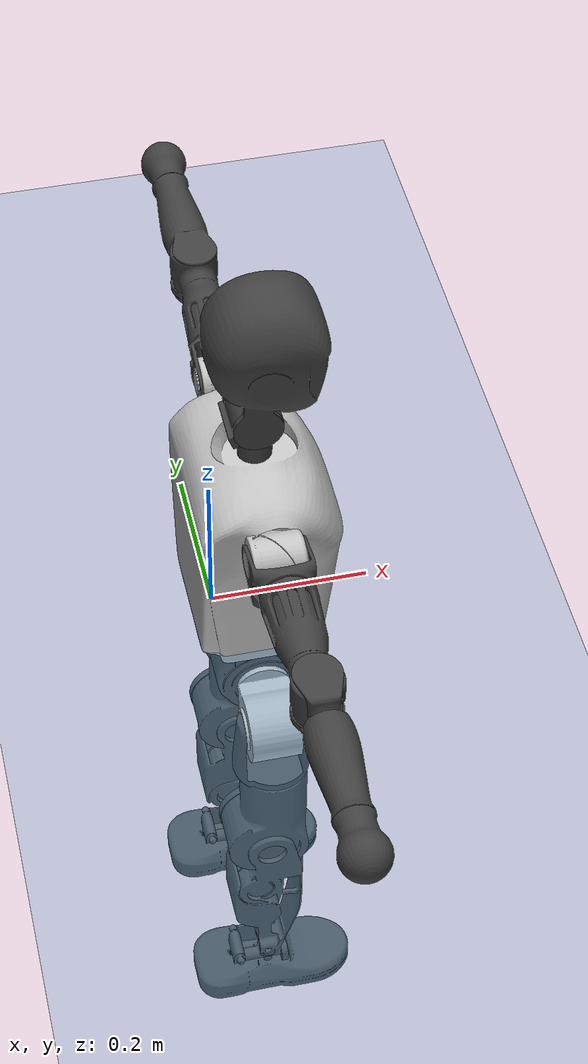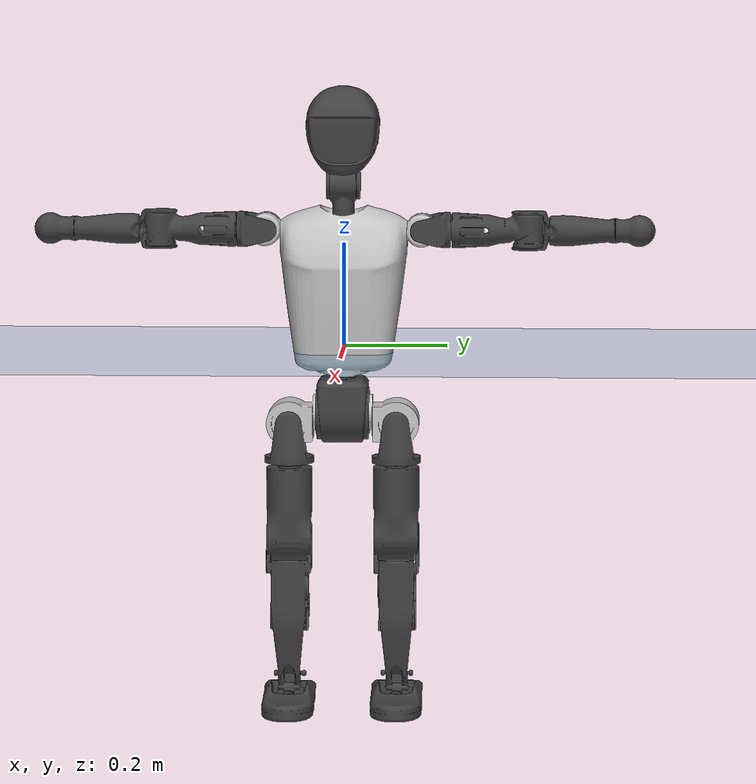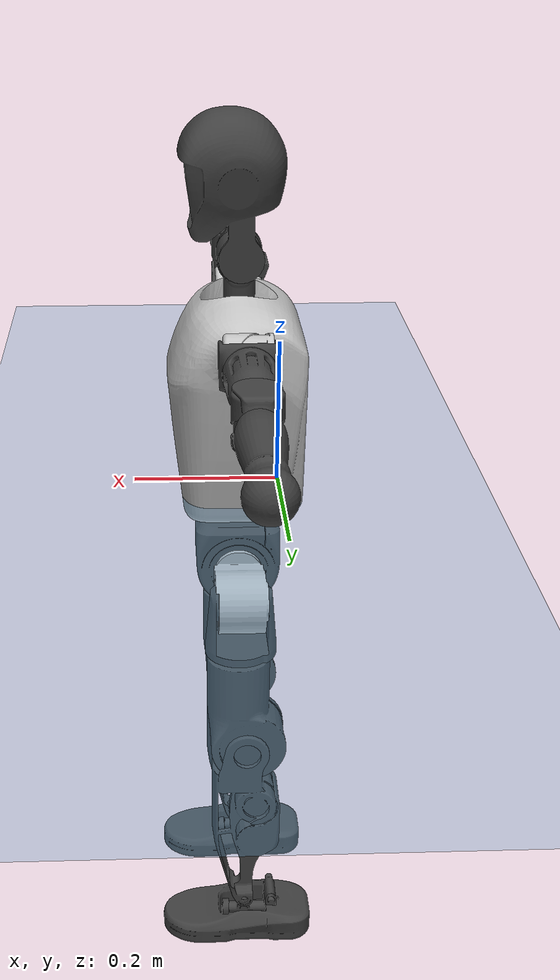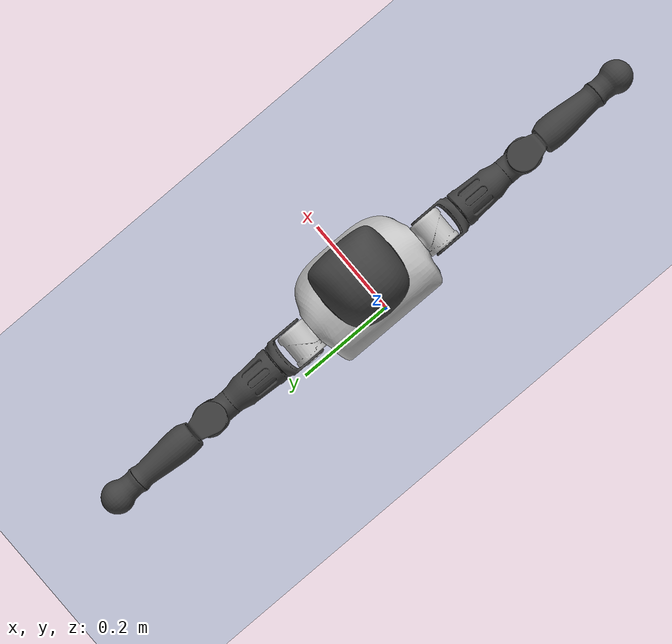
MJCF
<mujoco model="T1">
  <compiler angle="radian" assetdir="assets" balanceinertia="true" inertiafromgeom="false"/>

  <option timestep="0.005" density="1.2" viscosity="2e-05"/>

  <size nkey="1"/>

  <visual>
    <quality shadowsize="8192"/>
    <map shadowclip="0.5"/>
  </visual>

  <default>
    <default class="/">
      <joint armature="0.01" damping="0.01" frictionloss="0.1"/>
      <geom contype="0" conaffinity="0" group="1" solref="-1000 -80"/>
      <site size="0.01 0.005 0.005" group="5"/>
      <general forcelimited="true" biastype="affine" gainprm="25" biasprm="0 -25 -0.6"/>
      <default class="t1">
        <geom rgba="0.25 0.25 0.25 1"/>
        <default class="visual">
          <geom type="mesh" group="2"/>
        </default>
        <default class="collision">
          <geom group="3"/>
        </default>
        <default class="foot">
          <geom size="0.1115 0.05 0.015" type="box" condim="6" group="4" priority="1" solimp="0.015 1 0.015"/>
        </default>
        <default class="reward_collision_sphere">
          <geom group="5" rgba="1 0 0 1"/>
        </default>
      </default>
    </default>
  </default>

  <asset>
    <texture type="skybox" colorspace="auto" name="//unnamed_texture_0" builtin="gradient" rgb1="0.95 0.95 0.95" rgb2="0.95 0.95 0.95" width="100" height="600"/>
    <texture type="2d" colorspace="auto" name="texplane" builtin="checker" rgb1="0.345 0.575 0.748" rgb2="0.345 0.575 0.748" markrgb="1 1 1" width="512" height="512"/>
    <material name="MatPlane" class="/" texture="texplane" texuniform="true" texrepeat="2 2" specular="0.9"/>
    <mesh name="Trunk" class="/" file="Trunk.stl"/>
    <mesh name="H1" class="/" file="H1.stl"/>
    <mesh name="H2" class="/" file="H2.stl"/>
    <mesh name="AL1" class="/" file="AL1.stl"/>
    <mesh name="AL2" class="/" file="AL2.stl"/>
    <mesh name="AL3" class="/" file="AL3.stl"/>
    <mesh name="left_hand_link" class="/" file="left_hand_link.stl"/>
    <mesh name="AR1" class="/" file="AR1.stl"/>
    <mesh name="AR2" class="/" file="AR2.stl"/>
    <mesh name="AR3" class="/" file="AR3.stl"/>
    <mesh name="right_hand_link" class="/" file="right_hand_link.stl"/>
    <mesh name="Waist" class="/" file="Waist.stl"/>
    <mesh name="Hip_Pitch_Left" class="/" file="Hip_Pitch_Left.stl"/>
    <mesh name="Hip_Roll_Left" class="/" file="Hip_Roll_Left.stl"/>
    <mesh name="Hip_Yaw_Left" class="/" file="Hip_Yaw_Left.stl"/>
    <mesh name="Shank_Left" class="/" file="Shank_Left.stl"/>
    <mesh name="Ankle_Cross_Left" class="/" file="Ankle_Cross_Left.stl"/>
    <mesh name="left_foot_link" class="/" file="left_foot_link.stl"/>
    <mesh name="Hip_Pitch_Right" class="/" file="Hip_Pitch_Right.stl"/>
    <mesh name="Hip_Roll_Right" class="/" file="Hip_Roll_Right.stl"/>
    <mesh name="Hip_Yaw_Right" class="/" file="Hip_Yaw_Right.stl"/>
    <mesh name="Shank_Right" class="/" file="Shank_Right.stl"/>
    <mesh name="Ankle_Cross_Right" class="/" file="Ankle_Cross_Right.stl"/>
    <mesh name="right_foot_link" class="/" file="right_foot_link.stl"/>
  </asset>

  <worldbody>
    <geom name="floor" class="/" size="100 100 0.125" type="plane" group="0" material="MatPlane"/>
    <light name="toplight_shadow" class="/" pos="0 0 5" dir="0.0990148 0.0990148 -0.990148" type="directional" ambient="0.04 0.04 0.04" diffuse="0.55 0.55 0.55" specular="0.12 0.12 0.12"/>
    <light name="toplight_fill" class="/" pos="0 0 5" dir="0.0990148 0.0990148 -0.990148" type="directional" castshadow="false" ambient="0.04 0.04 0.04" diffuse="0.3 0.3 0.3" specular="0.08 0.08 0.08"/>
    <body name="trunk" childclass="t1" pos="0.000300448 0.00094215 0.000112088" quat="1 -7.57302e-05 -0.00024503 -0.000272055">
      <inertial pos="0.048165 -0.000690065 0.111992" quat="0.999961 0.000332903 -0.00879493 0.000747616" mass="10.7542" diaginertia="0.0492068 0.0671385 0.0721162"/>
      <joint name="//unnamed_joint_0" type="free" armature="0" damping="0" frictionloss="0"/>
      <geom name="//unnamed_geom_1" class="visual" rgba="0.76 0.76 0.76 1" mesh="Trunk"/>
      <geom name="//unnamed_geom_2" class="collision" size="0.0728214 0.0970952 0.145643" pos="0.0530605 0 0.126845" type="box"/>
      <geom name="//unnamed_geom_3" class="reward_collision_sphere" size="0.11166" pos="0.0530605 0 0.105704"/>
      <geom name="//unnamed_geom_4" class="reward_collision_sphere" size="0.0145643" pos="0.0530605 0.082575 0"/>
      <geom name="//unnamed_geom_5" class="reward_collision_sphere" size="0.0145643" pos="0.0530605 -0.082575 0"/>
      <geom name="//unnamed_geom_6" class="reward_collision_sphere" size="0.0145643" pos="0.0530605 0.103947 0.190268"/>
      <geom name="//unnamed_geom_7" class="reward_collision_sphere" size="0.0145643" pos="0.0530605 -0.103947 0.190268"/>
      <site name="imu" pos="-0.0030941 0.00152401 0.00305102" size="0.00970952"/>
      <camera name="track" pos="0 -1.94294 0" quat="0.707107 0.707107 0 0" mode="trackcom"/>
      <camera name="ego_camera" pos="0.10789 0 0.443959" quat="-0.5 -0.5 0.5 0.5"/>
      <body name="H1" pos="0.0559147 -0.00108871 0.255772" quat="1 -3.35877e-05 0.000365511 0.000124007">
        <inertial pos="-0.00020725 -0.00064558 0.0598043" quat="0.762522 -0.0116621 -0.000180824 0.646857" mass="0.39648" diaginertia="0.000127258 0.000188571 0.000195991"/>
        <joint name="AAHead_yaw" pos="0 0 0" axis="-0.00245705 0.00266325 0.999993" stiffness="0.000165773" range="-1.56976 1.56057" armature="0.0101541" damping="0.00986427" frictionloss="0.097102"/>
        <geom name="//unnamed_geom_8" class="visual" mesh="H1"/>
        <body name="H2" pos="-0.00132088 0.000650945 0.0647952" quat="1 -9.2847e-05 -0.000212259 -0.000162604">
          <inertial pos="0.00557843 0.00117071 0.104608" quat="0.988827 0.10407 -0.0733211 -0.0775509" mass="0.577448" diaginertia="0.00110484 0.00166266 0.0022735"/>
          <joint name="Head_pitch" pos="0 0 0" axis="-0.0044073 -0.99999 -6.42297e-05" range="-1.21889 0.349669" armature="0.00930622" damping="0.00604773" frictionloss="0.104291"/>
          <geom name="//unnamed_geom_9" class="visual" mesh="H2"/>
          <geom name="//unnamed_geom_10" class="collision" size="0.0776762" pos="0.00884342 0 0.116275"/>
          <geom name="//unnamed_geom_11" class="reward_collision_sphere" size="0.0873857" pos="0.0176868 0 0.105704"/>
        </body>
      </body>
      <body name="AL1" pos="0.0519682 0.102852 0.230381" quat="1 -1.09024e-05 0.000362284 3.02665e-05">
        <inertial pos="-0.00161392 0.043753 0.000161742" quat="0.504671 0.494997 -0.504537 0.495709" mass="0.481726" diaginertia="0.000736123 0.00111079 0.000385594"/>
        <joint name="Left_Shoulder_Pitch" pos="0 0 0" axis="-0.00454512 0.999979 -0.00452945" range="-3.31235 1.23871" armature="0.00945996" damping="0.00816112" frictionloss="0.0980767"/>
        <geom name="//unnamed_geom_12" class="visual" rgba="0.76 0.76 0.76 1" mesh="AL1"/>
        <body name="AL2" pos="0.000996684 0.0461026 0.000473785" quat="1 6.13169e-05 -4.64177e-05 0.000142613">
          <inertial pos="0.00251469 0.037679 -0.00024544" quat="0.489182 0.511399 -0.487695 0.5112" mass="0.148312" diaginertia="0.000218442 0.000299338 0.000234794"/>
          <joint name="Left_Shoulder_Roll" pos="0 0 0" axis="-0.999994 -0.00193846 -0.00290874" range="-1.56761 1.74884" armature="0.00958993" damping="0.00675608" frictionloss="0.0960537"/>
          <geom name="//unnamed_geom_13" class="visual" mesh="AL2"/>
          <body name="AL3" pos="0.000428616 0.0592061 -0.000535228" quat="1 0.000176792 -0.00011872 2.25336e-05">
            <inertial pos="0.000648336 0.0829202 -0.000112562" quat="0.704164 0.710028 -0.00256188 0.00263968" mass="0.929587" diaginertia="0.00683638 0.0109869 0.000799423"/>
            <joint name="Left_Elbow_Pitch" pos="0 0 0" axis="-0.000204871 -1 0.000454414" range="-2.26711 2.25773" armature="0.00975068" damping="0.017201" frictionloss="0.102426"/>
            <geom name="//unnamed_geom_14" class="visual" mesh="AL3"/>
            <geom name="//unnamed_geom_15" class="collision" size="0.0291286 0.0728214" pos="0 0.0485735 0" quat="0.707105 0.707108 0 0" type="cylinder"/>
            <geom name="//unnamed_geom_16" class="reward_collision_sphere" size="0.0349543"/>
            <body name="left_hand_link" pos="0.00102821 0.142509 -0.000112601" quat="1 0.000119895 8.50445e-05 0.000142793">
              <inertial pos="0.000470284 0.107292 0.000250448" quat="0.707619 0.706592 0.000203454 -0.00193247" mass="0.298941" diaginertia="0.00438452 0.00708269 0.000282832"/>
              <joint name="Left_Elbow_Yaw" pos="0 0 0" axis="0.000151877 -0.000841767 1" stiffness="0.000813499" range="-2.44574 -0.00150902" armature="0.00926583" damping="0.00729519" frictionloss="0.09728"/>
              <geom name="//unnamed_geom_17" class="visual" mesh="left_hand_link"/>
              <geom name="//unnamed_geom_18" class="collision" size="0.0291286 0.0849583" pos="0 0.126291 0" quat="0.707105 0.707108 0 0" type="cylinder"/>
              <geom name="//unnamed_geom_19" class="reward_collision_sphere" size="0.0485476"/>
              <geom name="//unnamed_geom_20" class="reward_collision_sphere" size="0.0339833" pos="0 0.106862 0"/>
              <geom name="//unnamed_geom_21" class="reward_collision_sphere" size="0.0339833" pos="0 0.208866 0"/>
            </body>
          </body>
        </body>
      </body>
      <body name="AR1" pos="0.0498688 -0.104061 0.231773" quat="1 0.000138718 0.000273991 0.000627745">
        <inertial pos="-0.000593483 -0.0429823 -0.00095925" quat="0.504204 0.495537 -0.504203 0.495984" mass="0.49051" diaginertia="0.000751159 0.00113255 0.000389315"/>
        <joint name="Right_Shoulder_Pitch" pos="0 0 0" axis="3.88709e-05 -0.999997 -0.00231285" range="-1.24286 3.31284" armature="0.0098821" damping="0.00403793" frictionloss="0.101201"/>
        <geom name="//unnamed_geom_22" class="visual" rgba="0.76 0.76 0.76 1" mesh="AR1"/>
        <body name="AR2" pos="-0.000595139 -0.0451689 -0.000656558" quat="1 -0.000175001 7.01272e-05 8.6492e-06">
          <inertial pos="0.00406248 -0.0372064 0.000105713" quat="0.510831 0.486198 -0.513954 0.48838" mass="0.147372" diaginertia="0.000218618 0.000297585 0.000234268"/>
          <joint name="Right_Shoulder_Roll" pos="0 0 0" axis="-0.999943 7.58274e-05 -0.0106961" range="-1.72266 1.58914" armature="0.0097116" damping="0.00595367" frictionloss="0.09504"/>
          <geom name="//unnamed_geom_23" class="visual" mesh="AR2"/>
          <body name="AR3" pos="0.000324174 -0.0588136 0.000138615" quat="1 0.000100796 -9.82165e-05 -0.000179641">
            <inertial pos="0.00107443 -0.0831308 -0.00093109" quat="0.708759 0.705448 0.00169767 -0.00102753" mass="0.936559" diaginertia="0.00713203 0.0114089 0.000843629"/>
            <joint name="Right_Elbow_Pitch" pos="0 0 0" axis="-0.00503987 0.999987 -0.0011569" range="-2.2606 2.23603" armature="0.00963929" damping="0.00645966" frictionloss="0.0925286"/>
            <geom name="//unnamed_geom_24" class="visual" mesh="AR3"/>
            <geom name="//unnamed_geom_25" class="collision" size="0.0291286 0.0728214" pos="0 -0.0485735 0" quat="0.707105 0.707108 0 0" type="cylinder"/>
            <geom name="//unnamed_geom_26" class="reward_collision_sphere" size="0.0349543"/>
            <body name="right_hand_link" pos="0.000476301 -0.141941 -0.000114849" quat="1 5.83664e-05 7.49408e-05 -5.98451e-05">
              <inertial pos="0.000661057 -0.106908 0.000706595" quat="0.706241 0.707971 -0.000677105 -0.00048796" mass="0.294016" diaginertia="0.00425532 0.00698422 0.000281642"/>
              <joint name="Right_Elbow_Yaw" pos="0 0 0" axis="0.000925352 0.00156603 0.999998" stiffness="0.00193226" range="-0.00260404 2.43174" armature="0.00995869" damping="0.00746021" frictionloss="0.0964088"/>
              <geom name="//unnamed_geom_27" class="visual" mesh="right_hand_link"/>
              <geom name="//unnamed_geom_28" class="collision" size="0.0291286 0.0849583" pos="0 -0.126291 0" quat="0.707105 0.707108 0 0" type="cylinder"/>
              <geom name="//unnamed_geom_29" class="reward_collision_sphere" size="0.0485476"/>
              <geom name="//unnamed_geom_30" class="reward_collision_sphere" size="0.0339833" pos="0 -0.106862 0"/>
              <geom name="//unnamed_geom_31" class="reward_collision_sphere" size="0.0339833" pos="0 -0.208866 0"/>
            </body>
          </body>
        </body>
      </body>
      <body name="Waist" pos="0.0559653 -0.00192721 -0.122871" quat="1 0.000221463 -2.23685e-05 5.40517e-05">
        <inertial pos="0.0013481 -0.000706469 0.00733716" quat="0.983932 -0.00126687 -0.178507 0.00340973" mass="2.38676" diaginertia="0.00293875 0.00468776 0.00635025"/>
        <joint name="Waist" pos="0 0 0" axis="0.00117388 0.00325759 0.999994" range="-1.55298 1.58618" armature="0.00981113" damping="0.0025125" frictionloss="0.0927171"/>
        <geom name="//unnamed_geom_32" class="visual" mesh="Waist"/>
        <body name="Hip_Pitch_Left" pos="6.13869e-05 0.103699 0.000406259" quat="1 0.000568089 -0.000185215 6.43292e-06">
          <inertial pos="0.0012727 -0.00707007 -0.0197946" quat="0.975427 0.219706 0.0162843 0.00262874" mass="0.946317" diaginertia="0.000988397 0.00127798 0.00167461"/>
          <joint name="Left_Hip_Pitch" pos="0 0 0" axis="-0.00163572 0.999997 0.00202266" range="-1.7899 1.57731" armature="0.0096411" damping="0.0072679" frictionloss="0.0963103"/>
          <geom name="//unnamed_geom_33" class="visual" rgba="0.76 0.76 0.76 1" mesh="Hip_Pitch_Left"/>
          <body name="Hip_Roll_Left" pos="0.00145427 -0.000494227 -0.0212913" quat="1 0.000168705 0.000127834 -0.000176773">
            <inertial pos="0.000783671 -0.000506704 -0.0569155" quat="0.706978 -0.00697388 -0.00415701 0.707189" mass="0.358607" diaginertia="0.000946012 0.00131139 0.000674882"/>
            <joint name="Left_Hip_Roll" pos="0 0 0" axis="-0.999995 -0.000575003 0.00297508" range="-1.55325 0.217686" armature="0.00998248" damping="0.00790764" frictionloss="0.0987549"/>
            <geom name="//unnamed_geom_34" class="visual" mesh="Hip_Roll_Left"/>
            <geom name="//unnamed_geom_35" class="reward_collision_sphere" size="0.0534024"/>
            <body name="Hip_Yaw_Left" pos="0.000366275 0.000163344 -0.0853399" quat="1 5.0401e-06 -1.94162e-05 -2.63637e-05">
              <inertial pos="-0.00516393 -0.000598047 -0.094881" quat="0.697534 -0.0338828 -0.0311014 0.715074" mass="1.96441" diaginertia="0.0136944 0.0213564 0.00334135"/>
              <joint name="Left_Hip_Yaw" pos="0 0 0" axis="0.000103149 0.000863748 -1" stiffness="0.000588641" range="-1.01582 1.03703" armature="0.00922662" damping="0.000310153" frictionloss="0.0977399"/>
              <geom name="//unnamed_geom_36" class="visual" mesh="Hip_Yaw_Left"/>
              <geom name="//unnamed_geom_37" class="collision" size="0.0485476 0.0776762" type="cylinder"/>
              <body name="Shank_Left" pos="-0.0118359 0.000443098 -0.142978" quat="1 -0.000180988 -0.000280237 -0.000267787">
                <inertial pos="-0.00542926 0.000515424 -0.131543" quat="0.997462 0.00227353 -0.0255285 0.0664294" mass="1.60941" diaginertia="0.0189978 0.0302189 0.00249946"/>
                <joint name="Left_Knee_Pitch" pos="0 0 0" axis="0.00253736 0.999996 0.000875847" range="-0.0204203 2.33518" armature="0.00980052" damping="0.0157581" frictionloss="0.0979219"/>
                <geom name="//unnamed_geom_38" class="visual" mesh="Shank_Left"/>
                <geom name="//unnamed_geom_39" class="collision" size="0.0485476 0.0728214" pos="0 0 -0.126845" type="cylinder"/>
                <geom name="//unnamed_geom_40" class="reward_collision_sphere" size="0.0631119"/>
                <body name="Ankle_Cross_Left" pos="0.00106396 0.000570211 -0.296321" quat="1 2.46542e-05 -5.12806e-05 -3.399e-05">
                  <inertial pos="-0.0038852 0.000932897 -0.0083803" quat="0.443565 0.551082 0.551135 0.442503" mass="0.0672635" diaginertia="1.55245e-05 2.19626e-05 1.49457e-05"/>
                  <joint name="Left_Ankle_Pitch" pos="0 0 0" axis="0.000418357 1 0.000462311" range="-0.856139 0.354738" armature="0.00954536" damping="0.00536534" frictionloss="0.0926435"/>
                  <geom name="//unnamed_geom_41" class="visual" mesh="Ankle_Cross_Left"/>
                  <body name="left_foot_link" pos="9.95156e-05 -0.000866943 -0.0118892" quat="1 -1.67773e-05 0.000467876 0.00042465">
                    <inertial pos="-0.000947237 0.000203045 -0.00900203" quat="0.00114338 0.622164 0.0041979 0.782875" mass="0.634636" diaginertia="0.00144489 0.0020748 0.00288777"/>
                    <joint name="Left_Ankle_Roll" pos="0 0 0" axis="-0.999997 0.000506037 0.00259567" range="-0.452165 0.423752" armature="0.00922129" damping="0.00710292" frictionloss="0.0938263"/>
                    <geom name="//unnamed_geom_42" class="visual" mesh="left_foot_link"/>
                    <geom name="left_foot" class="foot" size="0.102349 0.0505597 0.0146577" pos="0.00884342 0 -0.0158557"/>
                    <geom name="//unnamed_geom_44" class="reward_collision_sphere" size="0.0504895" pos="0.00884342 0 -0.0158557"/>
                    <geom name="//unnamed_geom_45" class="reward_collision_sphere" size="0.0291286" pos="0.0840125 -0.0223438 -0.0158557"/>
                    <geom name="//unnamed_geom_46" class="reward_collision_sphere" size="0.0291286" pos="-0.0619039 -0.0223438 -0.0158557"/>
                    <site name="left_foot" class="foot" pos="0.00884342 0 -0.0158557" size="0.00970952"/>
                  </body>
                </body>
              </body>
            </body>
          </body>
        </body>
        <body name="Hip_Pitch_Right" pos="-0.00119433 -0.103348 -0.000275106" quat="1 -1.24816e-05 -0.000239457 -6.7276e-05">
          <inertial pos="-6.61976e-05 0.00774886 -0.0198695" quat="0.973278 -0.229009 0.0163721 -0.00419664" mass="0.931431" diaginertia="0.000983738 0.00126294 0.00163583"/>
          <joint name="Right_Hip_Pitch" pos="0 0 0" axis="-0.000387045 -0.999999 -0.000930402" stiffness="0.00423774" range="-1.56148 1.80283" armature="0.00937115" damping="0.00896894" frictionloss="0.10096"/>
          <geom name="//unnamed_geom_47" class="visual" rgba="0.76 0.76 0.76 1" mesh="Hip_Pitch_Right"/>
          <body name="Hip_Roll_Right" pos="0.000920576 -0.000824491 -0.021137" quat="1 2.0505e-05 1.60407e-05 1.02935e-05">
            <inertial pos="0.00105575 -0.000733476 -0.0572621" quat="0.707905 -0.005777 -0.00536654 0.706264" mass="0.351744" diaginertia="0.000933287 0.00129325 0.000671066"/>
            <joint name="Right_Hip_Roll" pos="0 0 0" axis="-0.999998 0.00110113 -0.00141523" stiffness="0.00267937" range="-0.201344 1.54535" armature="0.00995421" damping="0.00166417" frictionloss="0.0923333"/>
            <geom name="//unnamed_geom_48" class="visual" mesh="Hip_Roll_Right"/>
            <geom name="//unnamed_geom_49" class="reward_collision_sphere" size="0.0534024"/>
            <body name="Hip_Yaw_Right" pos="0.0013884 0.000495569 -0.0870651" quat="1 -0.000180391 -5.30418e-05 0.000424712">
              <inertial pos="-0.0064351 0.000485579 -0.0951146" quat="0.711847 -0.027136 -0.0295939 0.701186" mass="1.96744" diaginertia="0.0137193 0.0216538 0.00337313"/>
              <joint name="Right_Hip_Yaw" pos="0 0 0" axis="-0.00188634 -0.00146175 -0.999997" range="-0.997025 1.01142" armature="0.00987836" damping="0.00463723" frictionloss="0.0975479"/>
              <geom name="//unnamed_geom_50" class="visual" mesh="Hip_Yaw_Right"/>
              <geom name="//unnamed_geom_51" class="collision" size="0.0485476 0.0776762" type="cylinder"/>
              <body name="Shank_Right" pos="-0.010802 -0.00108241 -0.141169" quat="1 0.000106014 -0.000226935 0.000295441">
                <inertial pos="-0.00626252 -0.000160608 -0.129232" quat="0.999318 -0.00317298 -0.0199871 -0.0309006" mass="1.67055" diaginertia="0.0191484 0.0304295 0.00258936"/>
                <joint name="Right_Knee_Pitch" pos="0 0 0" axis="-0.00503835 -0.999985 0.00215614" range="-2.34719 -0.0181447" armature="0.00974222" damping="0.0117532" frictionloss="0.0980549"/>
                <geom name="//unnamed_geom_52" class="visual" mesh="Shank_Right"/>
                <geom name="//unnamed_geom_53" class="collision" size="0.0485476 0.0728214" pos="0 0 -0.126845" type="cylinder"/>
                <geom name="//unnamed_geom_54" class="reward_collision_sphere" size="0.0631119"/>
                <body name="Ankle_Cross_Right" pos="-0.00144207 -0.000974547 -0.296641" quat="1 4.4971e-05 4.32119e-05 -2.74804e-05">
                  <inertial pos="-0.0035839 0.000265954 -0.00805442" quat="0.443424 0.551007 0.550802 0.443152" mass="0.0667369" diaginertia="1.53558e-05 2.22012e-05 1.50059e-05"/>
                  <joint name="Right_Ankle_Pitch" pos="0 0 0" axis="-0.000965775 -0.999993 -0.00359536" range="-0.380862 0.874556" armature="0.00957553" damping="0.00962738" frictionloss="0.0946071"/>
                  <geom name="//unnamed_geom_55" class="visual" mesh="Ankle_Cross_Right"/>
                  <body name="right_foot_link" pos="0.000298531 -0.000327144 -0.0134789" quat="1 2.34863e-05 1.90448e-05 0.00017052">
                    <inertial pos="-0.000130795 -0.00013076 -0.00979353" quat="-0.00110146 0.620759 -0.00454861 0.783988" mass="0.639233" diaginertia="0.0014562 0.00206011 0.0028713"/>
                    <joint name="Right_Ankle_Roll" pos="0 0 0" axis="-1 0.000306018 0.000228035" range="-0.449458 0.457241" armature="0.00967031" damping="0.00783388" frictionloss="0.0916077"/>
                    <geom name="//unnamed_geom_56" class="visual" mesh="right_foot_link"/>
                    <geom name="right_foot" class="foot" size="0.0982926 0.0453945 0.0145182" pos="0.00884342 0 -0.0158557"/>
                    <geom name="//unnamed_geom_58" class="reward_collision_sphere" size="0.0388381"/>
                    <geom name="//unnamed_geom_59" class="reward_collision_sphere" size="0.0291286" pos="0.00884342 0 -0.0158557"/>
                    <geom name="//unnamed_geom_60" class="reward_collision_sphere" size="0.0291286" pos="0.0840125 0.0223438 -0.0158557"/>
                    <geom name="//unnamed_geom_61" class="reward_collision_sphere" size="0.0291286" pos="-0.0619039 0.0223438 -0.0158557"/>
                    <site name="right_foot" class="foot" pos="0.00884342 0 -0.0158557" size="0.00970952"/>
                  </body>
                </body>
              </body>
            </body>
          </body>
        </body>
      </body>
    </body>
  </worldbody>

  <contact>
    <pair class="/" geom1="floor" geom2="left_foot" name="//unnamed_contact_0"/>
    <pair class="/" geom1="floor" geom2="right_foot" name="//unnamed_contact_1"/>
  </contact>

  <actuator>
    <general name="AAHead_yaw" class="/" joint="AAHead_yaw" forcerange="-6.85773 6.85773" gainprm="23.4242" biasprm="0 -23.4242 -0.554708"/>
    <general name="Head_pitch" class="/" joint="Head_pitch" forcerange="-6.72716 6.72716" gainprm="23.4242" biasprm="0 -23.4242 -0.554708"/>
    <general name="Left_Shoulder_Pitch" class="/" joint="Left_Shoulder_Pitch" forcerange="-16.3643 16.3643" gainprm="23.4242" biasprm="0 -23.4242 -0.554708"/>
    <general name="Left_Shoulder_Roll" class="/" joint="Left_Shoulder_Roll" forcerange="-17.2054 17.2054" gainprm="23.4242" biasprm="0 -23.4242 -0.554708"/>
    <general name="Left_Elbow_Pitch" class="/" joint="Left_Elbow_Pitch" forcerange="-18.138 18.138" gainprm="23.4242" biasprm="0 -23.4242 -0.554708"/>
    <general name="Left_Elbow_Yaw" class="/" joint="Left_Elbow_Yaw" forcerange="-17.6184 17.6184" gainprm="23.4242" biasprm="0 -23.4242 -0.554708"/>
    <general name="Right_Shoulder_Pitch" class="/" joint="Right_Shoulder_Pitch" forcerange="-17.3227 17.3227" gainprm="23.4242" biasprm="0 -23.4242 -0.554708"/>
    <general name="Right_Shoulder_Roll" class="/" joint="Right_Shoulder_Roll" forcerange="-17.3062 17.3062" gainprm="23.4242" biasprm="0 -23.4242 -0.554708"/>
    <general name="Right_Elbow_Pitch" class="/" joint="Right_Elbow_Pitch" forcerange="-18.1538 18.1538" gainprm="23.4242" biasprm="0 -23.4242 -0.554708"/>
    <general name="Right_Elbow_Yaw" class="/" joint="Right_Elbow_Yaw" forcerange="-18.0052 18.0052" gainprm="23.4242" biasprm="0 -23.4242 -0.554708"/>
    <general name="Waist" class="/" joint="Waist" forcerange="-30.302 30.302" gainprm="23.4242" biasprm="0 -23.4242 -0.554708"/>
    <general name="Left_Hip_Pitch" class="/" joint="Left_Hip_Pitch" forcerange="-43.6871 43.6871" gainprm="23.4242" biasprm="0 -23.4242 -0.554708"/>
    <general name="Left_Hip_Roll" class="/" joint="Left_Hip_Roll" forcerange="-30.1547 30.1547" gainprm="23.4242" biasprm="0 -23.4242 -0.554708"/>
    <general name="Left_Hip_Yaw" class="/" joint="Left_Hip_Yaw" forcerange="-30.1998 30.1998" gainprm="23.4242" biasprm="0 -23.4242 -0.554708"/>
    <general name="Left_Knee_Pitch" class="/" joint="Left_Knee_Pitch" forcerange="-56.4372 56.4372" gainprm="23.4242" biasprm="0 -23.4242 -0.554708"/>
    <general name="Left_Ankle_Pitch" class="/" joint="Left_Ankle_Pitch" forcerange="-20.1238 20.1238" gainprm="23.4242" biasprm="0 -23.4242 -0.554708"/>
    <general name="Left_Ankle_Roll" class="/" joint="Left_Ankle_Roll" forcerange="-14.3196 14.3196" gainprm="23.4242" biasprm="0 -23.4242 -0.554708"/>
    <general name="Right_Hip_Pitch" class="/" joint="Right_Hip_Pitch" forcerange="-43.2205 43.2205" gainprm="23.4242" biasprm="0 -23.4242 -0.554708"/>
    <general name="Right_Hip_Roll" class="/" joint="Right_Hip_Roll" forcerange="-29.6202 29.6202" gainprm="23.4242" biasprm="0 -23.4242 -0.554708"/>
    <general name="Right_Hip_Yaw" class="/" joint="Right_Hip_Yaw" forcerange="-29.5985 29.5985" gainprm="23.4242" biasprm="0 -23.4242 -0.554708"/>
    <general name="Right_Knee_Pitch" class="/" joint="Right_Knee_Pitch" forcerange="-59.6181 59.6181" gainprm="23.4242" biasprm="0 -23.4242 -0.554708"/>
    <general name="Right_Ankle_Pitch" class="/" joint="Right_Ankle_Pitch" forcerange="-19.6914 19.6914" gainprm="23.4242" biasprm="0 -23.4242 -0.554708"/>
    <general name="Right_Ankle_Roll" class="/" joint="Right_Ankle_Roll" forcerange="-14.5989 14.5989" gainprm="23.4242" biasprm="0 -23.4242 -0.554708"/>
  </actuator>

  <sensor>
    <gyro site="imu" name="imu_angular_velocity"/>
    <velocimeter site="imu" name="imu_linear_velocity"/>
    <framelinvel objtype="site" objname="left_foot" name="left_foot_global_linear_velocity"/>
    <framelinvel objtype="site" objname="right_foot" name="right_foot_global_linear_velocity"/>
  </sensor>

  <keyframe>
    <key name="home" qpos="0 0 0.6385 1 0 0 0 0 0 0 1.4 0 -0.4 0 -1.4 0 0.4 0 -0.4 0 0 0.8 -0.4 0 0.4 0 0 -0.8 0.4 0"/>
  </keyframe>
</mujoco>
